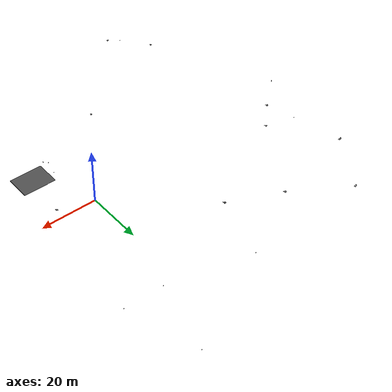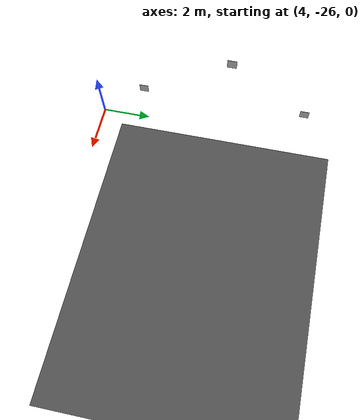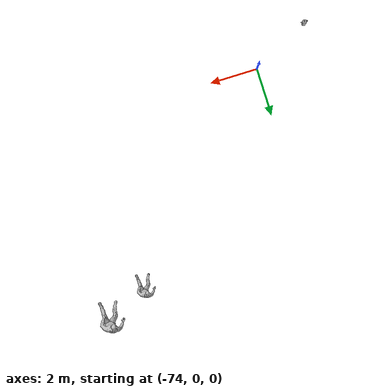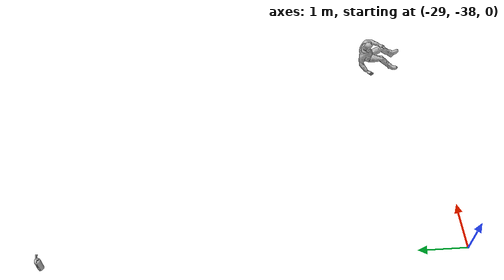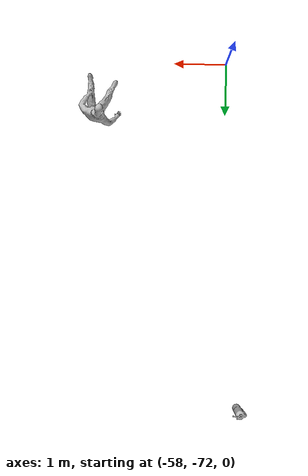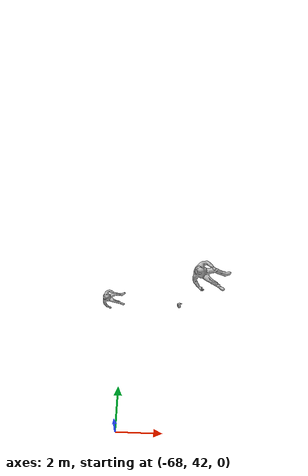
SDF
<sdf version="1.6">
 <world name="default">
  <light name="sun" type="directional">
   <pose>0 0 10 0 -0 0</pose>
   <diffuse>0.8 0.8 0.8 1</diffuse>
   <specular>0.2 0.2 0.2 1</specular>
   <attenuation>
    <range>1000</range>
    <constant>0.9</constant>
    <linear>0.01</linear>
    <quadratic>0.001</quadratic>
   </attenuation>
   <direction>-0.5 0.1 -0.9</direction>
  </light>
  <gravity>0 0 -9.8</gravity>
  <magnetic_field>6e-06 2.3e-05 -4.2e-05</magnetic_field>
  <atmosphere type="adiabatic"/>
  <physics name="default_physics" default="0" type="ode">
   <max_step_size>0.001</max_step_size>
   <real_time_factor>1</real_time_factor>
   <real_time_update_rate>1000</real_time_update_rate>
  </physics>
  <scene><ambient>0.4 0.4 0.4 1</ambient><background>0.7 0.7 0.7 1</background><shadows>1</shadows></scene>
  <audio><device>default</device></audio>
  <spherical_coordinates>
   <surface_model>EARTH_WGS84</surface_model>
   <latitude_deg>0</latitude_deg>
   <longitude_deg>0</longitude_deg>
   <elevation>0</elevation>
   <heading_deg>0</heading_deg>
  </spherical_coordinates>
  <model name="Apriltag36_11_00014">
   <link name="main">
    <visual name="main_Visual">
     <geometry><box><size>0.348 0.348 0.01</size></box></geometry>
     <material>
      <script>
       <uri>model://cave_world/Apriltag36_11_00014/materials/scripts</uri>
       <uri>model://cave_world/Apriltag36_11_00014/materials/textures</uri>
       <name>Apriltag36_11_00014</name>
      </script>
     </material>
    </visual>
   </link>
   <static>1</static>
   <pose>4.01 -24 1.99921 0 1.57 0</pose>
  </model>
  <model name="Apriltag36_11_00015">
   <link name="main">
    <visual name="main_Visual">
     <geometry><box><size>0.348 0.348 0.01</size></box></geometry>
     <material>
      <script>
       <uri>model://cave_world/Apriltag36_11_00015/materials/scripts</uri>
       <uri>model://cave_world/Apriltag36_11_00015/materials/textures</uri>
       <name>Apriltag36_11_00015</name>
      </script>
     </material>
    </visual>
   </link>
   <static>1</static>
   <pose>4.01 -17.5 2 0 1.57 0</pose>
  </model>
  <model name="Apriltag36_11_00016">
   <link name="main">
    <visual name="main_Visual">
     <geometry><box><size>0.348 0.348 0.01</size></box></geometry>
     <material>
      <script>
       <uri>model://cave_world/Apriltag36_11_00016/materials/scripts</uri>
       <uri>model://cave_world/Apriltag36_11_00016/materials/textures</uri>
       <name>Apriltag36_11_00016</name>
      </script>
     </material>
    </visual>
   </link>
   <static>1</static>
   <pose>4.01 -20.5 4.20131 0 1.57 0</pose>
  </model>
  <model name="extinguisher">
   <static>1</static>
   <link name="link">
    <collision name="collision">
     <geometry><mesh><uri>model://cave_world/extinguisher/meshes/extinguisher.dae</uri></mesh></geometry>
    </collision>
    <visual name="visual">
     <geometry><mesh><uri>model://cave_world/extinguisher/meshes/extinguisher.dae</uri></mesh></geometry>
    </visual>
   </link>
   <pose>-4.25913 -8.20501 0 0 -0 0</pose>
  </model>
  <model name="extinguisher_0">
   <static>1</static>
   <link name="link">
    <collision name="collision">
     <geometry><mesh><uri>model://cave_world/extinguisher/meshes/extinguisher.dae</uri></mesh></geometry>
    </collision>
    <visual name="visual">
     <geometry><mesh><uri>model://cave_world/extinguisher/meshes/extinguisher.dae</uri></mesh></geometry>
    </visual>
   </link>
   <pose>-28.909 -29.6289 0 0 -0 0</pose>
  </model>
  <model name="extinguisher_1">
   <static>1</static>
   <link name="link">
    <collision name="collision">
     <geometry><mesh><uri>model://cave_world/extinguisher/meshes/extinguisher.dae</uri></mesh></geometry>
    </collision>
    <visual name="visual">
     <geometry><mesh><uri>model://cave_world/extinguisher/meshes/extinguisher.dae</uri></mesh></geometry>
    </visual>
   </link>
   <pose>-24.113 48.9607 0 0 -0 0</pose>
  </model>
  <model name="extinguisher_2">
   <static>1</static>
   <link name="link">
    <collision name="collision">
     <geometry><mesh><uri>model://cave_world/extinguisher/meshes/extinguisher.dae</uri></mesh></geometry>
    </collision>
    <visual name="visual">
     <geometry><mesh><uri>model://cave_world/extinguisher/meshes/extinguisher.dae</uri></mesh></geometry>
    </visual>
   </link>
   <pose>11.3634 66.2611 0 0 -0 0</pose>
  </model>
  <model name="extinguisher_3">
   <static>1</static>
   <link name="link">
    <collision name="collision">
     <geometry><mesh><uri>model://cave_world/extinguisher/meshes/extinguisher.dae</uri></mesh></geometry>
    </collision>
    <visual name="visual">
     <geometry><mesh><uri>model://cave_world/extinguisher/meshes/extinguisher.dae</uri></mesh></geometry>
    </visual>
   </link>
   <pose>-65.4947 47.227 1.57409 0 -0 0</pose>
  </model>
  <model name="extinguisher_4">
   <static>1</static>
   <link name="link">
    <collision name="collision">
     <geometry><mesh><uri>model://cave_world/extinguisher/meshes/extinguisher.dae</uri></mesh></geometry>
    </collision>
    <visual name="visual">
     <geometry><mesh><uri>model://cave_world/extinguisher/meshes/extinguisher.dae</uri></mesh></geometry>
    </visual>
   </link>
   <pose>-57.9607 -66.0541 1.52774 0 -0 0</pose>
  </model>
  <model name="extinguisher_5">
   <static>1</static>
   <link name="link">
    <collision name="collision">
     <geometry><mesh><uri>model://cave_world/extinguisher/meshes/extinguisher.dae</uri></mesh></geometry>
    </collision>
    <visual name="visual">
     <geometry><mesh><uri>model://cave_world/extinguisher/meshes/extinguisher.dae</uri></mesh></geometry>
    </visual>
   </link>
   <pose>-74.2904 0.955523 12.9594 0 -0 0</pose>
  </model>
  <model name="extinguisher_6">
   <static>1</static>
   <link name="link">
    <collision name="collision">
     <geometry><mesh><uri>model://cave_world/extinguisher/meshes/extinguisher.dae</uri></mesh></geometry>
    </collision>
    <visual name="visual">
     <geometry><mesh><uri>model://cave_world/extinguisher/meshes/extinguisher.dae</uri></mesh></geometry>
    </visual>
   </link>
   <pose>19.4419 41.4969 0 0 -0 0</pose>
  </model>
  <model name="extinguisher_7">
   <static>1</static>
   <link name="link">
    <collision name="collision">
     <geometry><mesh><uri>model://cave_world/extinguisher/meshes/extinguisher.dae</uri></mesh></geometry>
    </collision>
    <visual name="visual">
     <geometry><mesh><uri>model://cave_world/extinguisher/meshes/extinguisher.dae</uri></mesh></geometry>
    </visual>
   </link>
   <pose>5.81774 42.3177 0.711227 0 -0 0</pose>
  </model>
  <model name="extinguisher_8">
   <static>1</static>
   <link name="link">
    <collision name="collision">
     <geometry><mesh><uri>model://cave_world/extinguisher/meshes/extinguisher.dae</uri></mesh></geometry>
    </collision>
    <visual name="visual">
     <geometry><mesh><uri>model://cave_world/extinguisher/meshes/extinguisher.dae</uri></mesh></geometry>
    </visual>
   </link>
   <pose>-58.5341 27.3052 21 0 -0 0</pose>
  </model>
  <model name="survivor">
   <static>1</static>
   <link name="link">
    <pose>0 0 -0.623996 0 -0 0</pose>
    <collision name="collision">
     <geometry><mesh><uri>model://cave_world/survivor/meshes/rescue_randy.dae</uri></mesh></geometry>
    </collision>
    <visual name="visual">
     <geometry><mesh><uri>model://cave_world/survivor/meshes/rescue_randy.dae</uri></mesh></geometry>
    </visual>
   </link>
   <pose>-66.6833 -58.0085 0 0 -0 0</pose>
  </model>
  <model name="survivor_0">
   <static>1</static>
   <link name="link">
    <pose>0 0 -0.623996 0 -0 0</pose>
    <collision name="collision">
     <geometry><mesh><uri>model://cave_world/survivor/meshes/rescue_randy.dae</uri></mesh></geometry>
    </collision>
    <visual name="visual">
     <geometry><mesh><uri>model://cave_world/survivor/meshes/rescue_randy.dae</uri></mesh></geometry>
    </visual>
   </link>
   <pose>-55.5231 -70.9872 0 0 -0 0</pose>
  </model>
  <model name="survivor_1">
   <static>1</static>
   <link name="link">
    <pose>0 0 -0.623996 0 -0 0</pose>
    <collision name="collision">
     <geometry><mesh><uri>model://cave_world/survivor/meshes/rescue_randy.dae</uri></mesh></geometry>
    </collision>
    <visual name="visual">
     <geometry><mesh><uri>model://cave_world/survivor/meshes/rescue_randy.dae</uri></mesh></geometry>
    </visual>
   </link>
   <pose>-23.9432 -36.8348 0 0 -0 0</pose>
  </model>
  <model name="survivor_2">
   <static>1</static>
   <link name="link">
    <pose>0 0 -0.623996 0 -0 0</pose>
    <collision name="collision">
     <geometry><mesh><uri>model://cave_world/survivor/meshes/rescue_randy.dae</uri></mesh></geometry>
    </collision>
    <visual name="visual">
     <geometry><mesh><uri>model://cave_world/survivor/meshes/rescue_randy.dae</uri></mesh></geometry>
    </visual>
   </link>
   <pose>-66.9321 7.28888 0.61083 0 -0 0</pose>
  </model>
  <model name="survivor_3">
   <static>1</static>
   <link name="link">
    <pose>0 0 -0.623996 0 -0 0</pose>
    <collision name="collision">
     <geometry><mesh><uri>model://cave_world/survivor/meshes/rescue_randy.dae</uri></mesh></geometry>
    </collision>
    <visual name="visual">
     <geometry><mesh><uri>model://cave_world/survivor/meshes/rescue_randy.dae</uri></mesh></geometry>
    </visual>
   </link>
   <pose>14.3473 0.291891 4.51921 0 -0 0</pose>
  </model>
  <model name="survivor_4">
   <static>1</static>
   <link name="link">
    <pose>0 0 -0.623996 0 -0 0</pose>
    <collision name="collision">
     <geometry><mesh><uri>model://cave_world/survivor/meshes/rescue_randy.dae</uri></mesh></geometry>
    </collision>
    <visual name="visual">
     <geometry><mesh><uri>model://cave_world/survivor/meshes/rescue_randy.dae</uri></mesh></geometry>
    </visual>
   </link>
   <pose>-66.3143 7.56488 10.055 0 -0 0</pose>
  </model>
  <model name="survivor_5">
   <static>1</static>
   <link name="link">
    <pose>0 0 -0.623996 0 -0 0</pose>
    <collision name="collision">
     <geometry><mesh><uri>model://cave_world/survivor/meshes/rescue_randy.dae</uri></mesh></geometry>
    </collision>
    <visual name="visual">
     <geometry><mesh><uri>model://cave_world/survivor/meshes/rescue_randy.dae</uri></mesh></geometry>
    </visual>
   </link>
   <pose>-14.7119 44.6243 23 0 -0 0</pose>
  </model>
  <model name="survivor_6">
   <static>1</static>
   <link name="link">
    <pose>0 0 -0.623996 0 -0 0</pose>
    <collision name="collision">
     <geometry><mesh><uri>model://cave_world/survivor/meshes/rescue_randy.dae</uri></mesh></geometry>
    </collision>
    <visual name="visual">
     <geometry><mesh><uri>model://cave_world/survivor/meshes/rescue_randy.dae</uri></mesh></geometry>
    </visual>
   </link>
   <pose>-34.8524 48.5825 18.1807 0 -0 0</pose>
  </model>
  <model name="survivor_7">
   <static>1</static>
   <link name="link">
    <pose>0 0 -0.623996 0 -0 0</pose>
    <collision name="collision">
     <geometry><mesh><uri>model://cave_world/survivor/meshes/rescue_randy.dae</uri></mesh></geometry>
    </collision>
    <visual name="visual">
     <geometry><mesh><uri>model://cave_world/survivor/meshes/rescue_randy.dae</uri></mesh></geometry>
    </visual>
   </link>
   <pose>-64.9775 41.7477 18.1268 0 -0 1.45</pose>
  </model>
  <model name="survivor_8">
   <static>1</static>
   <link name="link">
    <pose>0 0 -0.623996 0 -0 0</pose>
    <collision name="collision">
     <geometry><mesh><uri>model://cave_world/survivor/meshes/rescue_randy.dae</uri></mesh></geometry>
    </collision>
    <visual name="visual">
     <geometry><mesh><uri>model://cave_world/survivor/meshes/rescue_randy.dae</uri></mesh></geometry>
    </visual>
   </link>
   <pose>-68.5983 47.8488 0.513332 0 -0 1.75</pose>
  </model>
  <model name="asphalt_plane">
   <static>1</static>
   <link name="link">
    <collision name="collision"><geometry><box><size>9 11.6978 0.1</size></box></geometry></collision>
    <visual name="visual">
     <cast_shadows>0</cast_shadows>
     <geometry><box><size>9 11.6978 0.1</size></box></geometry>
     <material>
      <script>
       <uri>model://cave_world/asphalt_plane/materials/scripts</uri>
       <uri>model://cave_world/asphalt_plane/materials/textures</uri>
       <name>vrc/asphalt</name>
      </script>
     </material>
    </visual>
   </link>
   <pose>10.469 -20.5581 0 0 0 -1.5708</pose>
  </model>
 </world>
</sdf>
